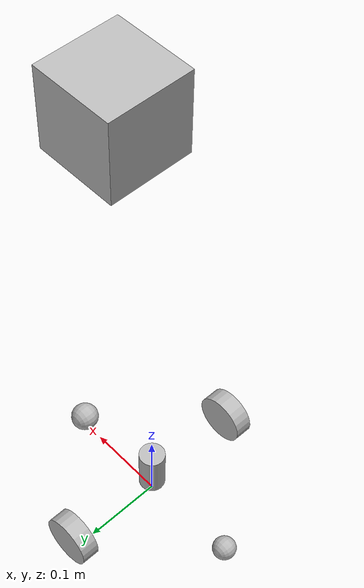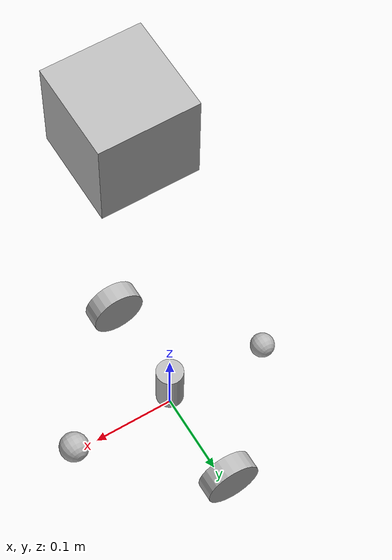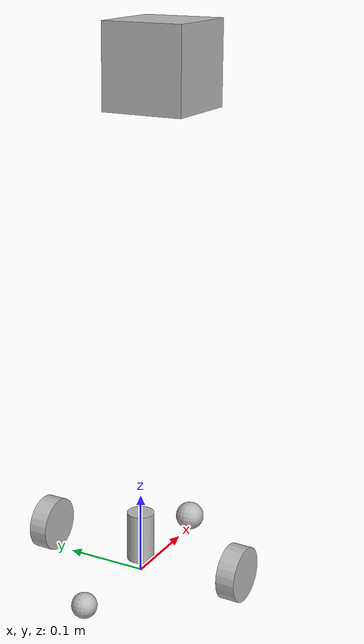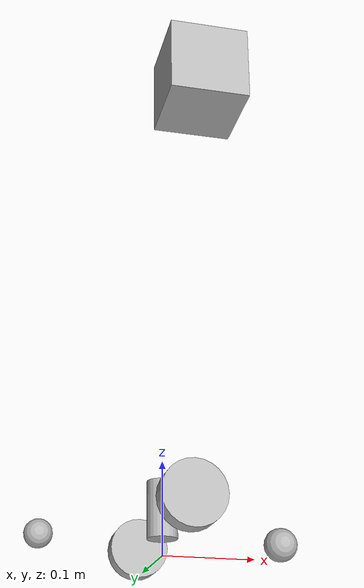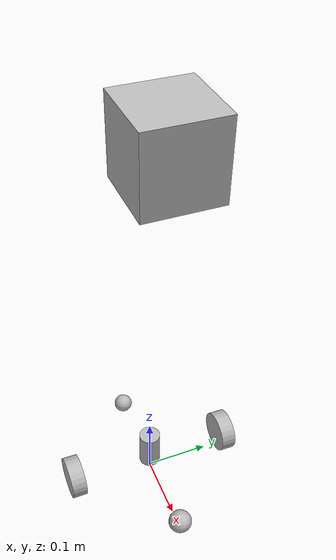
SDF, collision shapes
<?xml version="1.0" ?>
<sdf version="1.4">
    <model name='create'>
      <link name='base'>
        <inertial>
          <pose>0.001453 -0.000453 0.029787 0 -0 0</pose>
          <inertia>
            <ixx>0.05864</ixx>
            <ixy>0.000124</ixy>
            <ixz>0.000615</ixz>
            <iyy>0.058786</iyy>
            <iyz>1.4e-05</iyz>
            <izz>1.53244</izz>
          </inertia>
          <mass>2.234</mass>
        </inertial>
        <collision name='base_collision'>
          <pose>0 0 0.0478 0 -0 0</pose>
          <geometry>
            <cylinder>
              <radius>0.016495</radius>
              <length>0.061163</length>
            </cylinder>
          </geometry>
          <max_contacts>10</max_contacts>
          <surface>
            <bounce/>
            <friction>
              <ode/>
            </friction>
            <contact>
              <ode/>
            </contact>
          </surface>
        </collision>
        <visual name='base_visual'>
          <pose>0 0 0.0478 0 -0 0</pose>
          <geometry>
            <mesh>
              <uri>model://create/meshes/create_body.dae</uri>
            </mesh>
          </geometry>
        </visual>
        <collision name='front_wheel_collision'>
          <pose>0.13 0 0.017 -5.76279e-13 1.5707 1.5707</pose>
          <geometry>
            <sphere>
              <radius>0.018</radius>
            </sphere>
          </geometry>
          <surface>
            <friction>
              <ode>
                <mu>0</mu>
                <mu2>0</mu2>
                <fdir1>0 0 0</fdir1>
                <slip1>0</slip1>
                <slip2>0</slip2>
              </ode>
            </friction>
            <bounce/>
            <contact>
              <ode/>
            </contact>
          </surface>
          <max_contacts>10</max_contacts>
        </collision>
        <visual name='front_wheel_visual'>
          <pose>0.13 0 0.017 -5.76279e-13 1.5707 1.5707</pose>
          <geometry>
            <sphere>
              <radius>0.009</radius>
            </sphere>
          </geometry>
        </visual>
        <collision name='rear_wheel_collision'>
          <pose>-0.13 0 0.017 -5.76279e-13 1.5707 1.5707</pose>
          <geometry>
            <sphere>
              <radius>0.015</radius>
            </sphere>
          </geometry>
          <surface>
            <friction>
              <ode>
                <mu>0</mu>
                <mu2>0</mu2>
                <fdir1>0 0 0</fdir1>
                <slip1>0</slip1>
                <slip2>0</slip2>
              </ode>
            </friction>
            <bounce/>
            <contact>
              <ode/>
            </contact>
          </surface>
          <max_contacts>10</max_contacts>
        </collision>
        <visual name='rear_wheel_visual'>
          <pose>-0.13 0 0.017 -5.76279e-13 1.5707 1.5707</pose>
          <geometry>
            <sphere>
              <radius>0.0075</radius>
            </sphere>
          </geometry>
        </visual>
        <sensor name='left_cliff_sensor' type='ray'>
          <pose>0.07 0.14 0.027 0 1.57079 0</pose>
          <ray>
            <scan>
              <horizontal>
                <samples>1</samples>
                <resolution>1</resolution>
                <min_angle>0</min_angle>
                <max_angle>0</max_angle>
              </horizontal>
            </scan>
            <range>
              <min>0.01</min>
              <max>0.04</max>
              <resolution>0.1</resolution>
            </range>
          </ray>
        </sensor>
        <sensor name='leftfront_cliff_sensor' type='ray'>
          <pose>0.15 0.04 0.027 0 1.57079 0</pose>
          <ray>
            <scan>
              <horizontal>
                <samples>1</samples>
                <resolution>1</resolution>
                <min_angle>0</min_angle>
                <max_angle>0</max_angle>
              </horizontal>
            </scan>
            <range>
              <min>0.01</min>
              <max>0.04</max>
              <resolution>0.1</resolution>
            </range>
          </ray>
        </sensor>
        <sensor name='right_cliff_sensor' type='ray'>
          <pose>0.07 -0.14 0.027 0 1.57079 0</pose>
          <ray>
            <scan>
              <horizontal>
                <samples>1</samples>
                <resolution>1</resolution>
                <min_angle>0</min_angle>
                <max_angle>0</max_angle>
              </horizontal>
            </scan>
            <range>
              <min>0.01</min>
              <max>0.04</max>
              <resolution>0.1</resolution>
            </range>
          </ray>
        </sensor>
        <sensor name='rightfront_cliff_sensor' type='ray'>
          <pose>0.15 -0.04 0.027 0 1.57079 0</pose>
          <ray>
            <scan>
              <horizontal>
                <samples>1</samples>
                <resolution>1</resolution>
                <min_angle>0</min_angle>
                <max_angle>0</max_angle>
              </horizontal>
            </scan>
            <range>
              <min>0.01</min>
              <max>0.04</max>
              <resolution>0.1</resolution>
            </range>
          </ray>
        </sensor>
        <sensor name='wall_sensor' type='ray'>
          <pose>0.09 -0.12 0.059 0 0 -1</pose>
          <ray>
            <scan>
              <horizontal>
                <samples>1</samples>
                <resolution>1</resolution>
                <min_angle>0</min_angle>
                <max_angle>0</max_angle>
              </horizontal>
            </scan>
            <range>
              <min>0.016</min>
              <max>0.04</max>
              <resolution>0.1</resolution>
            </range>
          </ray>
        </sensor>
        <velocity_decay>
          <linear>0</linear>
          <angular>0</angular>
        </velocity_decay>
        <self_collide>0</self_collide>
        <kinematic>0</kinematic>
        <gravity>1</gravity>
      </link>
      <link name='left_wheel'>
        <pose>0 0.13 0.032 0 -0 0</pose>
        <inertial>
          <inertia>
            <ixx>0.001</ixx>
            <ixy>0</ixy>
            <ixz>0</ixz>
            <iyy>0.001</iyy>
            <iyz>0</iyz>
            <izz>0.001</izz>
          </inertia>
          <mass>0.01</mass>
        </inertial>
        <collision name='collision'>
          <pose>0 0 0 -5.76279e-13 1.5707 1.5707</pose>
          <geometry>
            <cylinder>
              <radius>0.033</radius>
              <length>0.023</length>
            </cylinder>
          </geometry>
          <surface>
            <friction>
              <ode>
                <mu>10</mu>
                <mu2>10</mu2>
                <fdir1>0 0 0</fdir1>
                <slip1>0</slip1>
                <slip2>0</slip2>
              </ode>
            </friction>
            <bounce/>
            <contact>
              <ode/>
            </contact>
          </surface>
          <max_contacts>10</max_contacts>
        </collision>
        <visual name='visual'>
          <pose>0 0 0 -5.76279e-13 1.5707 1.5707</pose>
          <geometry>
            <cylinder>
              <radius>0.033</radius>
              <length>0.023</length>
            </cylinder>
          </geometry>
        </visual>
        <velocity_decay>
          <linear>0</linear>
          <angular>0</angular>
        </velocity_decay>
        <self_collide>0</self_collide>
        <kinematic>0</kinematic>
        <gravity>1</gravity>
      </link>
      <link name='right_wheel'>
        <pose>0 -0.13 0.032 0 -0 0</pose>
        <inertial>
          <inertia>
            <ixx>0.001</ixx>
            <ixy>0</ixy>
            <ixz>0</ixz>
            <iyy>0.001</iyy>
            <iyz>0</iyz>
            <izz>0.001</izz>
          </inertia>
          <mass>0.01</mass>
        </inertial>
        <collision name='collision'>
          <pose>0 0 0 -5.76279e-13 1.5707 1.5707</pose>
          <geometry>
            <cylinder>
              <radius>0.033</radius>
              <length>0.023</length>
            </cylinder>
          </geometry>
          <surface>
            <friction>
              <ode>
                <mu>10</mu>
                <mu2>10</mu2>
                <fdir1>0 0 0</fdir1>
                <slip1>0</slip1>
                <slip2>0</slip2>
              </ode>
            </friction>
            <bounce/>
            <contact>
              <ode/>
            </contact>
          </surface>
          <max_contacts>10</max_contacts>
        </collision>
        <visual name='visual'>
          <pose>0 0 0 -5.76279e-13 1.5707 1.5707</pose>
          <geometry>
            <cylinder>
              <radius>0.033</radius>
              <length>0.023</length>
            </cylinder>
          </geometry>
        </visual>
        <velocity_decay>
          <linear>0</linear>
          <angular>0</angular>
        </velocity_decay>
        <self_collide>0</self_collide>
        <kinematic>0</kinematic>
        <gravity>1</gravity>
      </link>
      <joint name='left_wheel' type='revolute'>
        <parent>base</parent>
        <child>left_wheel</child>
        <axis>
          <xyz>0 1 0</xyz>
          <limit>
            <lower>-1e+16</lower>
            <upper>1e+16</upper>
          </limit>
        </axis>
      </joint>
      <joint name='right_wheel' type='revolute'>
        <parent>base</parent>
        <child>right_wheel</child>
        <axis>
          <xyz>0 1 0</xyz>
          <limit>
            <lower>-1e+16</lower>
            <upper>1e+16</upper>
          </limit>
        </axis>
      </joint>
     <!-- camera left -->
    <link name="camera_sensor_left_link">
      <pose>0.175 0.05 0.175 0 0 0</pose>
      <inertial>
        <inertia>
          <ixx>1e-6</ixx>
          <ixy>0</ixy>
          <ixz>0</ixz>
          <iyy>1e-6</iyy>
          <iyz>0</iyz>
          <izz>1e-6</izz>
        </inertia>
        <mass>1e-5</mass>
      </inertial>

      <sensor name="camera_sensor_left" type="camera">
      <update_rate>10</update_rate>
      <camera name="head">
        <horizontal_fov>1.5708</horizontal_fov>
        <image>
          <width>640</width>
          <height>480</height>
          <format>R8G8B8</format>
        </image>
        <clip>
          <near>0.02</near>
          <far>300</far>
        </clip>
        <noise>
          <type>gaussian</type>
          <mean>0.0</mean>
          <stddev>0.007</stddev>
        </noise>
      </camera>
      <plugin filename="libgazebo_ros_camera.so" name="camera_sensor_left_controller">
        <alwaysOn>true</alwaysOn>
        <updateRate>0.0</updateRate>
        <cameraName>stereo/left</cameraName>
        <imageTopicName>image_raw</imageTopicName>
        <cameraInfoTopicName>camera_info</cameraInfoTopicName>
        <frameName>camera_sensor_left_link</frameName>
        <hackBaseline>0.07</hackBaseline>
        <distortionK1>0.0</distortionK1>
        <distortionK2>0.0</distortionK2>
        <distortionK3>0.0</distortionK3>
        <distortionT1>0.0</distortionT1>
        <distortionT2>0.0</distortionT2>
        <blurSigma>0</blurSigma>
        <distortionSigma>0.0</distortionSigma>
      </plugin>
    </sensor>
    </link>

     <joint name="camera_sensor_left_joint" type="revolute">
      <parent>base</parent>
      <child>camera_sensor_left_link</child>
      <axis>
        <xyz>0.175 0.05 0.175</xyz>
        <limit>
          <upper>0</upper>
          <lower>0</lower>
        </limit>
      </axis>
    </joint>

     <!-- camera right -->
    <link name="camera_sensor_right_link">
      <pose>0.175 -0.05 0.175 0 0 0</pose>
      <inertial>
        <inertia>
          <ixx>1e-6</ixx>
          <ixy>0</ixy>
          <ixz>0</ixz>
          <iyy>1e-6</iyy>
          <iyz>0</iyz>
          <izz>1e-6</izz>
        </inertia>
        <mass>1e-5</mass>
      </inertial>

      <sensor name="camera_sensor_right" type="camera">
      <update_rate>10</update_rate>
      <camera name="head">
        <horizontal_fov>1.5708</horizontal_fov>
        <image>
          <width>640</width>
          <height>480</height>
          <format>R8G8B8</format>
        </image>
        <clip>
          <near>0.02</near>
          <far>300</far>
        </clip>
        <noise>
          <type>gaussian</type>
          <mean>0.0</mean>
          <stddev>0.007</stddev>
        </noise>
      </camera>
      <plugin filename="libgazebo_ros_camera.so" name="camera_sensor_right_controller">
        <alwaysOn>true</alwaysOn>
        <updateRate>0.0</updateRate>
        <cameraName>stereo/right</cameraName>
        <imageTopicName>image_raw</imageTopicName>
        <cameraInfoTopicName>camera_info</cameraInfoTopicName>
        <frameName>camera_sensor_right_link</frameName>
        <hackBaseline>0.07</hackBaseline>
        <distortionK1>0.0</distortionK1>
        <distortionK2>0.0</distortionK2>
        <distortionK3>0.0</distortionK3>
        <distortionT1>0.0</distortionT1>
        <distortionT2>0.0</distortionT2>
        <blurSigma>0</blurSigma>
        <distortionSigma>0.0</distortionSigma>
      </plugin>
    </sensor>
    </link>

     <joint name="camera_sensor_right_joint" type="revolute">
      <parent>base</parent>
      <child>camera_sensor_right_link</child>
      <axis>
        <xyz>0.175 -0.05 0.175</xyz>
        <limit>
          <upper>0</upper>
          <lower>0</lower>
        </limit>
      </axis>
    </joint>
      <link name='hokuyo_link'>
        <pose>0.05 0 0.11 0 -0 0</pose>
        <inertial>
          <inertia>
            <ixx>1e-06</ixx>
            <ixy>0</ixy>
            <ixz>0</ixz>
            <iyy>1e-06</iyy>
            <iyz>0</iyz>
            <izz>1e-06</izz>
          </inertia>
          <mass>1e-05</mass>
        </inertial>
        <collision name='collision'>
          <pose>0 0 0.5 0 -0 0</pose>
          <geometry>
            <box>
              <size>0.1 0.1 0.1</size>
            </box>
          </geometry>
          <max_contacts>10</max_contacts>
          <surface>
            <bounce/>
            <friction>
              <ode/>
            </friction>
            <contact>
              <ode/>
            </contact>
          </surface>
        </collision>
        <visual name='visual'>
          <geometry>
            <mesh>
              <uri>model://hokuyo/meshes/hokuyo.dae</uri>
            </mesh>
          </geometry>
        </visual>
        <sensor name='laser' type='ray'>
          <pose>0.01 0 0.0175 0 -0 0</pose>
          <ray>
            <scan>
              <horizontal>
                <samples>640</samples>
                <resolution>1</resolution>
                <min_angle>-2.26889</min_angle>
                <max_angle>2.2689</max_angle>
              </horizontal>
            </scan>
            <range>
              <min>0.08</min>
              <max>1</max>
              <resolution>0.01</resolution>
            </range>
          </ray>
          <plugin name='gazebo_ros_head_hokuyo_controller' filename='libgazebo_ros_laser.so'>
            <topicName>/scan</topicName>
            <frameName>base_footprint</frameName>
            <updateRate>15.0</updateRate>
            <robotNamespace>/</robotNamespace>
          </plugin>
          <always_on>1</always_on>
          <update_rate>30</update_rate>
          <visualize>1</visualize>
        </sensor>
        <velocity_decay>
          <linear>0</linear>
          <angular>0</angular>
        </velocity_decay>
        <self_collide>0</self_collide>
        <kinematic>0</kinematic>
        <gravity>1</gravity>
      </link>
      <joint name='hokuyo_joint' type='revolute'>
        <parent>base</parent>
        <child>hokuyo_link</child>
        <axis>
          <xyz>0 1 0</xyz>
          <limit>
            <upper>0</upper>
            <lower>0</lower>
          </limit>
        </axis>
      </joint>
      <plugin name='differential_drive_controller' filename='libgazebo_ros_diff_drive.so'>
        <alwaysOn>true</alwaysOn>
        <updateRate>100</updateRate>
        <update_rate>20</update_rate>
        <leftJoint>right_wheel</leftJoint>
        <rightJoint>left_wheel</rightJoint>
        <wheelSeparation>0.5380</wheelSeparation>
        <wheelDiameter>0.2410</wheelDiameter>
        <torque>20</torque>
        <commandTopic>cmd_vel</commandTopic>
        <odometryTopic>odom</odometryTopic>
        <odometryFrame>odom</odometryFrame>
        <robotBaseFrame>base_footprint</robotBaseFrame>
        <robotNamespace>/</robotNamespace>
      </plugin>
      <pose>0 0 0 0 -0 0</pose>
      <static>0</static>
    </model>
</sdf>
